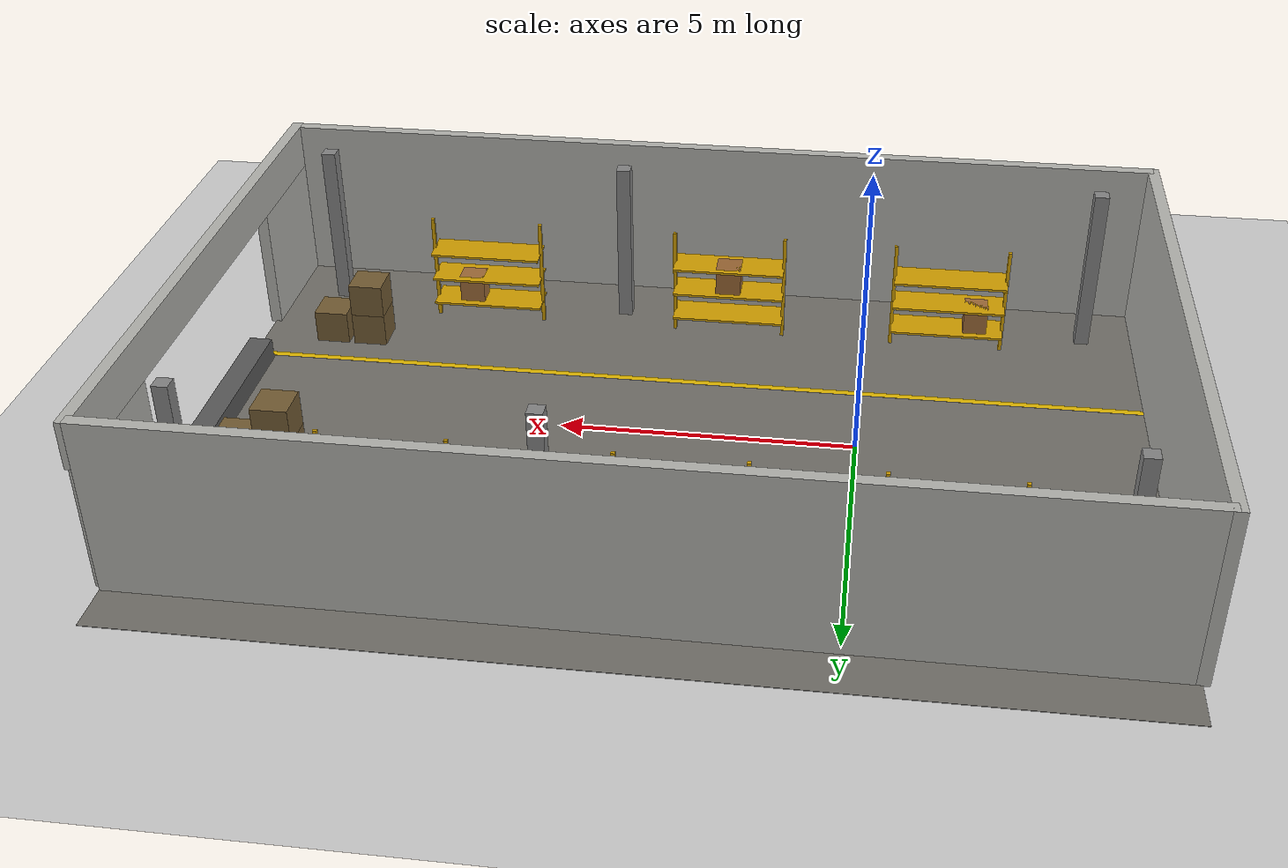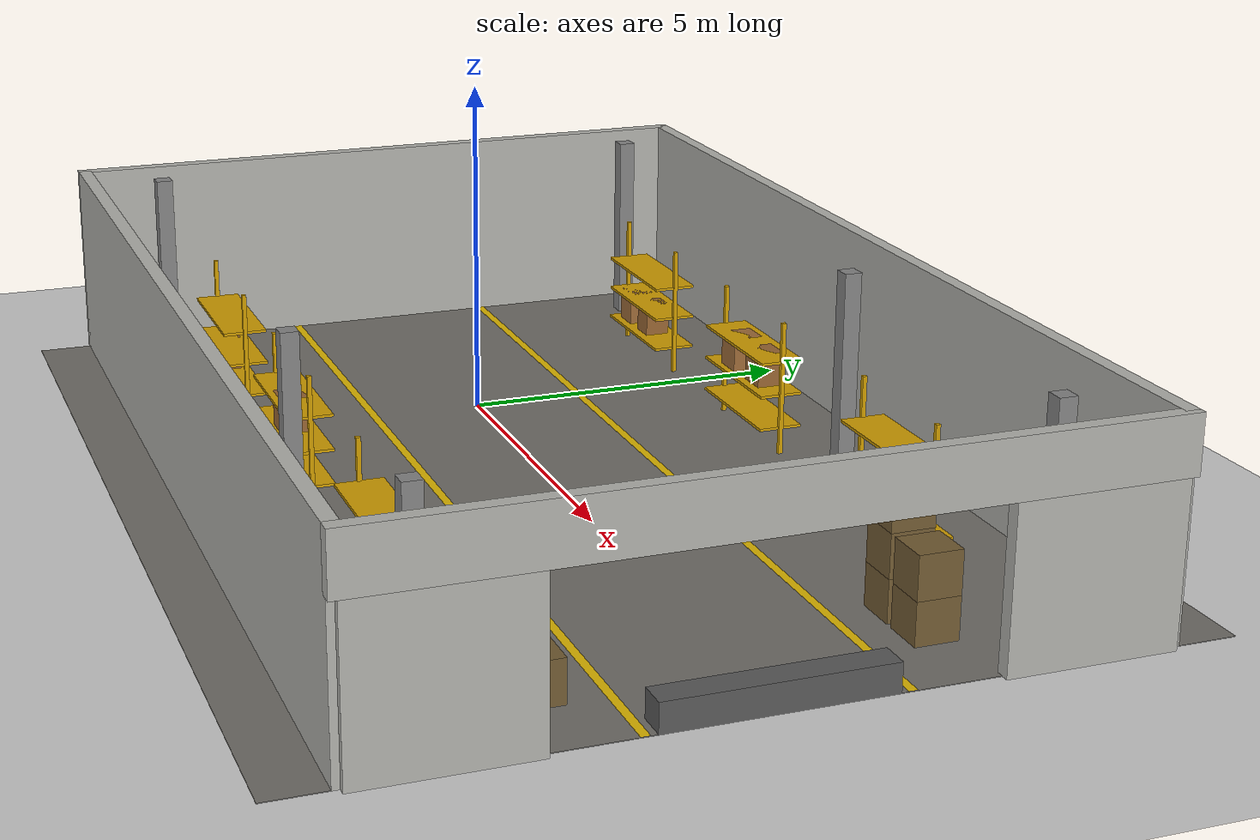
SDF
<?xml version="1.0" ?>
<sdf version="1.6">
  <world name="warehouse">

    <!-- Top-down camera: centred over the route (x=3, y=0), 22 m up -->
    <gui fullscreen="0">
      <camera name="user_camera">
        <pose>3 0 22 0 1.5708 0</pose>
        <view_controller>orbit</view_controller>
        <projection_type>perspective</projection_type>
      </camera>
    </gui>

    <physics type="ode">
      <real_time_update_rate>1000.0</real_time_update_rate>
      <max_step_size>0.001</max_step_size>
      <real_time_factor>1</real_time_factor>
      <ode>
        <solver><type>quick</type><iters>150</iters><sor>1.4</sor></solver>
      </ode>
    </physics>

    <!-- Dim industrial interior scene -->
    <scene>
      <ambient>0.25 0.25 0.25 1</ambient>
      <background>0.15 0.15 0.15 1</background>
      <shadows>true</shadows>
    </scene>

    <!-- Overhead industrial point lights -->
    <light type="point" name="light_w">
      <pose>0 0 4 0 0 0</pose>
      <diffuse>1.0 0.95 0.8 1</diffuse>
      <specular>0.15 0.15 0.15 1</specular>
      <attenuation>
        <range>14</range><constant>0.1</constant>
        <linear>0.06</linear><quadratic>0.008</quadratic>
      </attenuation>
      <cast_shadows>false</cast_shadows>
    </light>

    <light type="point" name="light_e">
      <pose>6 0 4 0 0 0</pose>
      <diffuse>1.0 0.95 0.8 1</diffuse>
      <specular>0.15 0.15 0.15 1</specular>
      <attenuation>
        <range>14</range><constant>0.1</constant>
        <linear>0.06</linear><quadratic>0.008</quadratic>
      </attenuation>
      <cast_shadows>false</cast_shadows>
    </light>

    <include><uri>model://ground_plane</uri></include>

    <!-- Concrete floor overlay (16 m x 12 m, centred at x=3) -->
    <model name="floor"><static>true</static><pose>3 0 0.005 0 0 0</pose>
      <link name="link">
        <visual name="vis">
          <geometry><box><size>16 12 0.01</size></box></geometry>
          <material>
            <ambient>0.37 0.36 0.34 1</ambient>
            <diffuse>0.44 0.43 0.41 1</diffuse>
          </material>
        </visual>
      </link>
    </model>

    <!--  PERIMETER WALLS   (x: -5..11, y: -5.1..5.1, height 3 m)        -->

    <model name="wall_n"><static>true</static><pose>3 5.1 1.5 0 0 0</pose>
      <link name="link">
        <collision name="col"><geometry><box><size>16 0.2 3.0</size></box></geometry></collision>
        <visual name="vis"><geometry><box><size>16 0.2 3.0</size></box></geometry>
          <material><ambient>0.70 0.70 0.68 1</ambient><diffuse>0.70 0.70 0.68 1</diffuse></material>
        </visual>
      </link>
    </model>

    <model name="wall_s"><static>true</static><pose>3 -5.1 1.5 0 0 0</pose>
      <link name="link">
        <collision name="col"><geometry><box><size>16 0.2 3.0</size></box></geometry></collision>
        <visual name="vis"><geometry><box><size>16 0.2 3.0</size></box></geometry>
          <material><ambient>0.70 0.70 0.68 1</ambient><diffuse>0.70 0.70 0.68 1</diffuse></material>
        </visual>
      </link>
    </model>

    <model name="wall_w"><static>true</static><pose>-5 0 1.5 0 0 0</pose>
      <link name="link">
        <collision name="col"><geometry><box><size>0.2 10.4 3.0</size></box></geometry></collision>
        <visual name="vis"><geometry><box><size>0.2 10.4 3.0</size></box></geometry>
          <material><ambient>0.70 0.70 0.68 1</ambient><diffuse>0.70 0.70 0.68 1</diffuse></material>
        </visual>
      </link>
    </model>

    <!-- East wall split around a 3 m loading-dock door centred at y=0 -->
    <model name="wall_e_top"><static>true</static><pose>11 0 2.6 0 0 0</pose>
      <link name="link">
        <collision name="col"><geometry><box><size>0.2 10.4 0.8</size></box></geometry></collision>
        <visual name="vis"><geometry><box><size>0.2 10.4 0.8</size></box></geometry>
          <material><ambient>0.70 0.70 0.68 1</ambient><diffuse>0.70 0.70 0.68 1</diffuse></material>
        </visual>
      </link>
    </model>
    <model name="wall_e_n"><static>true</static><pose>11 3.95 1.1 0 0 0</pose>
      <link name="link">
        <collision name="col"><geometry><box><size>0.2 2.3 2.2</size></box></geometry></collision>
        <visual name="vis"><geometry><box><size>0.2 2.3 2.2</size></box></geometry>
          <material><ambient>0.70 0.70 0.68 1</ambient><diffuse>0.70 0.70 0.68 1</diffuse></material>
        </visual>
      </link>
    </model>
    <model name="wall_e_s"><static>true</static><pose>11 -3.95 1.1 0 0 0</pose>
      <link name="link">
        <collision name="col"><geometry><box><size>0.2 2.3 2.2</size></box></geometry></collision>
        <visual name="vis"><geometry><box><size>0.2 2.3 2.2</size></box></geometry>
          <material><ambient>0.70 0.70 0.68 1</ambient><diffuse>0.70 0.70 0.68 1</diffuse></material>
        </visual>
      </link>
    </model>

    <!--  SUPPORT PILLARS  (0.25 x 0.25, 3 m tall, 3 pairs)              -->

    <model name="pillar_nw"><static>true</static><pose>-4 4.0 1.5 0 0 0</pose>
      <link name="link">
        <collision name="col"><geometry><box><size>0.25 0.25 3.0</size></box></geometry></collision>
        <visual name="vis"><geometry><box><size>0.25 0.25 3.0</size></box></geometry>
          <material><ambient>0.48 0.48 0.48 1</ambient><diffuse>0.52 0.52 0.52 1</diffuse></material>
        </visual>
      </link>
    </model>
    <model name="pillar_sw"><static>true</static><pose>-4 -4.0 1.5 0 0 0</pose>
      <link name="link">
        <collision name="col"><geometry><box><size>0.25 0.25 3.0</size></box></geometry></collision>
        <visual name="vis"><geometry><box><size>0.25 0.25 3.0</size></box></geometry>
          <material><ambient>0.48 0.48 0.48 1</ambient><diffuse>0.52 0.52 0.52 1</diffuse></material>
        </visual>
      </link>
    </model>
    <model name="pillar_nm"><static>true</static><pose>4.5 4.0 1.5 0 0 0</pose>
      <link name="link">
        <collision name="col"><geometry><box><size>0.25 0.25 3.0</size></box></geometry></collision>
        <visual name="vis"><geometry><box><size>0.25 0.25 3.0</size></box></geometry>
          <material><ambient>0.48 0.48 0.48 1</ambient><diffuse>0.52 0.52 0.52 1</diffuse></material>
        </visual>
      </link>
    </model>
    <model name="pillar_sm"><static>true</static><pose>4.5 -4.0 1.5 0 0 0</pose>
      <link name="link">
        <collision name="col"><geometry><box><size>0.25 0.25 3.0</size></box></geometry></collision>
        <visual name="vis"><geometry><box><size>0.25 0.25 3.0</size></box></geometry>
          <material><ambient>0.48 0.48 0.48 1</ambient><diffuse>0.52 0.52 0.52 1</diffuse></material>
        </visual>
      </link>
    </model>
    <model name="pillar_ne"><static>true</static><pose>10 4.0 1.5 0 0 0</pose>
      <link name="link">
        <collision name="col"><geometry><box><size>0.25 0.25 3.0</size></box></geometry></collision>
        <visual name="vis"><geometry><box><size>0.25 0.25 3.0</size></box></geometry>
          <material><ambient>0.48 0.48 0.48 1</ambient><diffuse>0.52 0.52 0.52 1</diffuse></material>
        </visual>
      </link>
    </model>
    <model name="pillar_se"><static>true</static><pose>10 -4.0 1.5 0 0 0</pose>
      <link name="link">
        <collision name="col"><geometry><box><size>0.25 0.25 3.0</size></box></geometry></collision>
        <visual name="vis"><geometry><box><size>0.25 0.25 3.0</size></box></geometry>
          <material><ambient>0.48 0.48 0.48 1</ambient><diffuse>0.52 0.52 0.52 1</diffuse></material>
        </visual>
      </link>
    </model>

    <!--  SHELF RACKS - NORTH SIDE  (y = 3.5)                            -->
    <!--  3 units: N1 (x -2.5 to -0.5), N2 (x 1.5 to 3.5), N3 (x 6-8) -->

    <!-- Rack N1 uprights -->
    <model name="sn1_ul"><static>true</static><pose>-2.5 3.5 1.0 0 0 0</pose>
      <link name="link">
        <collision name="col"><geometry><box><size>0.06 0.06 2.0</size></box></geometry></collision>
        <visual name="vis"><geometry><box><size>0.06 0.06 2.0</size></box></geometry>
          <material><ambient>0.82 0.62 0.0 1</ambient><diffuse>0.82 0.62 0.0 1</diffuse></material>
        </visual>
      </link>
    </model>
    <model name="sn1_ur"><static>true</static><pose>-0.5 3.5 1.0 0 0 0</pose>
      <link name="link">
        <collision name="col"><geometry><box><size>0.06 0.06 2.0</size></box></geometry></collision>
        <visual name="vis"><geometry><box><size>0.06 0.06 2.0</size></box></geometry>
          <material><ambient>0.82 0.62 0.0 1</ambient><diffuse>0.82 0.62 0.0 1</diffuse></material>
        </visual>
      </link>
    </model>
    <!-- Rack N1 shelves -->
    <model name="sn1_s1"><static>true</static><pose>-1.5 3.5 0.40 0 0 0</pose>
      <link name="link">
        <collision name="col"><geometry><box><size>2.0 0.65 0.04</size></box></geometry></collision>
        <visual name="vis"><geometry><box><size>2.0 0.65 0.04</size></box></geometry>
          <material><ambient>0.82 0.62 0.0 1</ambient><diffuse>0.82 0.62 0.0 1</diffuse></material>
        </visual>
      </link>
    </model>
    <model name="sn1_s2"><static>true</static><pose>-1.5 3.5 0.90 0 0 0</pose>
      <link name="link">
        <collision name="col"><geometry><box><size>2.0 0.65 0.04</size></box></geometry></collision>
        <visual name="vis"><geometry><box><size>2.0 0.65 0.04</size></box></geometry>
          <material><ambient>0.82 0.62 0.0 1</ambient><diffuse>0.82 0.62 0.0 1</diffuse></material>
        </visual>
      </link>
    </model>
    <model name="sn1_s3"><static>true</static><pose>-1.5 3.5 1.40 0 0 0</pose>
      <link name="link">
        <collision name="col"><geometry><box><size>2.0 0.65 0.04</size></box></geometry></collision>
        <visual name="vis"><geometry><box><size>2.0 0.65 0.04</size></box></geometry>
          <material><ambient>0.82 0.62 0.0 1</ambient><diffuse>0.82 0.62 0.0 1</diffuse></material>
        </visual>
      </link>
    </model>

    <!-- Rack N2 uprights -->
    <model name="sn2_ul"><static>true</static><pose>1.5 3.5 1.0 0 0 0</pose>
      <link name="link">
        <collision name="col"><geometry><box><size>0.06 0.06 2.0</size></box></geometry></collision>
        <visual name="vis"><geometry><box><size>0.06 0.06 2.0</size></box></geometry>
          <material><ambient>0.82 0.62 0.0 1</ambient><diffuse>0.82 0.62 0.0 1</diffuse></material>
        </visual>
      </link>
    </model>
    <model name="sn2_ur"><static>true</static><pose>3.5 3.5 1.0 0 0 0</pose>
      <link name="link">
        <collision name="col"><geometry><box><size>0.06 0.06 2.0</size></box></geometry></collision>
        <visual name="vis"><geometry><box><size>0.06 0.06 2.0</size></box></geometry>
          <material><ambient>0.82 0.62 0.0 1</ambient><diffuse>0.82 0.62 0.0 1</diffuse></material>
        </visual>
      </link>
    </model>
    <!-- Rack N2 shelves -->
    <model name="sn2_s1"><static>true</static><pose>2.5 3.5 0.40 0 0 0</pose>
      <link name="link">
        <collision name="col"><geometry><box><size>2.0 0.65 0.04</size></box></geometry></collision>
        <visual name="vis"><geometry><box><size>2.0 0.65 0.04</size></box></geometry>
          <material><ambient>0.82 0.62 0.0 1</ambient><diffuse>0.82 0.62 0.0 1</diffuse></material>
        </visual>
      </link>
    </model>
    <model name="sn2_s2"><static>true</static><pose>2.5 3.5 0.90 0 0 0</pose>
      <link name="link">
        <collision name="col"><geometry><box><size>2.0 0.65 0.04</size></box></geometry></collision>
        <visual name="vis"><geometry><box><size>2.0 0.65 0.04</size></box></geometry>
          <material><ambient>0.82 0.62 0.0 1</ambient><diffuse>0.82 0.62 0.0 1</diffuse></material>
        </visual>
      </link>
    </model>
    <model name="sn2_s3"><static>true</static><pose>2.5 3.5 1.40 0 0 0</pose>
      <link name="link">
        <collision name="col"><geometry><box><size>2.0 0.65 0.04</size></box></geometry></collision>
        <visual name="vis"><geometry><box><size>2.0 0.65 0.04</size></box></geometry>
          <material><ambient>0.82 0.62 0.0 1</ambient><diffuse>0.82 0.62 0.0 1</diffuse></material>
        </visual>
      </link>
    </model>

    <!-- Rack N3 uprights -->
    <model name="sn3_ul"><static>true</static><pose>6.0 3.5 1.0 0 0 0</pose>
      <link name="link">
        <collision name="col"><geometry><box><size>0.06 0.06 2.0</size></box></geometry></collision>
        <visual name="vis"><geometry><box><size>0.06 0.06 2.0</size></box></geometry>
          <material><ambient>0.82 0.62 0.0 1</ambient><diffuse>0.82 0.62 0.0 1</diffuse></material>
        </visual>
      </link>
    </model>
    <model name="sn3_ur"><static>true</static><pose>8.0 3.5 1.0 0 0 0</pose>
      <link name="link">
        <collision name="col"><geometry><box><size>0.06 0.06 2.0</size></box></geometry></collision>
        <visual name="vis"><geometry><box><size>0.06 0.06 2.0</size></box></geometry>
          <material><ambient>0.82 0.62 0.0 1</ambient><diffuse>0.82 0.62 0.0 1</diffuse></material>
        </visual>
      </link>
    </model>
    <!-- Rack N3 shelves -->
    <model name="sn3_s1"><static>true</static><pose>7.0 3.5 0.40 0 0 0</pose>
      <link name="link">
        <collision name="col"><geometry><box><size>2.0 0.65 0.04</size></box></geometry></collision>
        <visual name="vis"><geometry><box><size>2.0 0.65 0.04</size></box></geometry>
          <material><ambient>0.82 0.62 0.0 1</ambient><diffuse>0.82 0.62 0.0 1</diffuse></material>
        </visual>
      </link>
    </model>
    <model name="sn3_s2"><static>true</static><pose>7.0 3.5 0.90 0 0 0</pose>
      <link name="link">
        <collision name="col"><geometry><box><size>2.0 0.65 0.04</size></box></geometry></collision>
        <visual name="vis"><geometry><box><size>2.0 0.65 0.04</size></box></geometry>
          <material><ambient>0.82 0.62 0.0 1</ambient><diffuse>0.82 0.62 0.0 1</diffuse></material>
        </visual>
      </link>
    </model>
    <model name="sn3_s3"><static>true</static><pose>7.0 3.5 1.40 0 0 0</pose>
      <link name="link">
        <collision name="col"><geometry><box><size>2.0 0.65 0.04</size></box></geometry></collision>
        <visual name="vis"><geometry><box><size>2.0 0.65 0.04</size></box></geometry>
          <material><ambient>0.82 0.62 0.0 1</ambient><diffuse>0.82 0.62 0.0 1</diffuse></material>
        </visual>
      </link>
    </model>

    <!--  SHELF RACKS - SOUTH SIDE  (y = -3.5)  — mirror of north        -->

    <!-- Rack S1 uprights -->
    <model name="ss1_ul"><static>true</static><pose>-2.5 -3.5 1.0 0 0 0</pose>
      <link name="link">
        <collision name="col"><geometry><box><size>0.06 0.06 2.0</size></box></geometry></collision>
        <visual name="vis"><geometry><box><size>0.06 0.06 2.0</size></box></geometry>
          <material><ambient>0.82 0.62 0.0 1</ambient><diffuse>0.82 0.62 0.0 1</diffuse></material>
        </visual>
      </link>
    </model>
    <model name="ss1_ur"><static>true</static><pose>-0.5 -3.5 1.0 0 0 0</pose>
      <link name="link">
        <collision name="col"><geometry><box><size>0.06 0.06 2.0</size></box></geometry></collision>
        <visual name="vis"><geometry><box><size>0.06 0.06 2.0</size></box></geometry>
          <material><ambient>0.82 0.62 0.0 1</ambient><diffuse>0.82 0.62 0.0 1</diffuse></material>
        </visual>
      </link>
    </model>
    <model name="ss1_s1"><static>true</static><pose>-1.5 -3.5 0.40 0 0 0</pose>
      <link name="link">
        <collision name="col"><geometry><box><size>2.0 0.65 0.04</size></box></geometry></collision>
        <visual name="vis"><geometry><box><size>2.0 0.65 0.04</size></box></geometry>
          <material><ambient>0.82 0.62 0.0 1</ambient><diffuse>0.82 0.62 0.0 1</diffuse></material>
        </visual>
      </link>
    </model>
    <model name="ss1_s2"><static>true</static><pose>-1.5 -3.5 0.90 0 0 0</pose>
      <link name="link">
        <collision name="col"><geometry><box><size>2.0 0.65 0.04</size></box></geometry></collision>
        <visual name="vis"><geometry><box><size>2.0 0.65 0.04</size></box></geometry>
          <material><ambient>0.82 0.62 0.0 1</ambient><diffuse>0.82 0.62 0.0 1</diffuse></material>
        </visual>
      </link>
    </model>
    <model name="ss1_s3"><static>true</static><pose>-1.5 -3.5 1.40 0 0 0</pose>
      <link name="link">
        <collision name="col"><geometry><box><size>2.0 0.65 0.04</size></box></geometry></collision>
        <visual name="vis"><geometry><box><size>2.0 0.65 0.04</size></box></geometry>
          <material><ambient>0.82 0.62 0.0 1</ambient><diffuse>0.82 0.62 0.0 1</diffuse></material>
        </visual>
      </link>
    </model>

    <!-- Rack S2 uprights -->
    <model name="ss2_ul"><static>true</static><pose>1.5 -3.5 1.0 0 0 0</pose>
      <link name="link">
        <collision name="col"><geometry><box><size>0.06 0.06 2.0</size></box></geometry></collision>
        <visual name="vis"><geometry><box><size>0.06 0.06 2.0</size></box></geometry>
          <material><ambient>0.82 0.62 0.0 1</ambient><diffuse>0.82 0.62 0.0 1</diffuse></material>
        </visual>
      </link>
    </model>
    <model name="ss2_ur"><static>true</static><pose>3.5 -3.5 1.0 0 0 0</pose>
      <link name="link">
        <collision name="col"><geometry><box><size>0.06 0.06 2.0</size></box></geometry></collision>
        <visual name="vis"><geometry><box><size>0.06 0.06 2.0</size></box></geometry>
          <material><ambient>0.82 0.62 0.0 1</ambient><diffuse>0.82 0.62 0.0 1</diffuse></material>
        </visual>
      </link>
    </model>
    <model name="ss2_s1"><static>true</static><pose>2.5 -3.5 0.40 0 0 0</pose>
      <link name="link">
        <collision name="col"><geometry><box><size>2.0 0.65 0.04</size></box></geometry></collision>
        <visual name="vis"><geometry><box><size>2.0 0.65 0.04</size></box></geometry>
          <material><ambient>0.82 0.62 0.0 1</ambient><diffuse>0.82 0.62 0.0 1</diffuse></material>
        </visual>
      </link>
    </model>
    <model name="ss2_s2"><static>true</static><pose>2.5 -3.5 0.90 0 0 0</pose>
      <link name="link">
        <collision name="col"><geometry><box><size>2.0 0.65 0.04</size></box></geometry></collision>
        <visual name="vis"><geometry><box><size>2.0 0.65 0.04</size></box></geometry>
          <material><ambient>0.82 0.62 0.0 1</ambient><diffuse>0.82 0.62 0.0 1</diffuse></material>
        </visual>
      </link>
    </model>
    <model name="ss2_s3"><static>true</static><pose>2.5 -3.5 1.40 0 0 0</pose>
      <link name="link">
        <collision name="col"><geometry><box><size>2.0 0.65 0.04</size></box></geometry></collision>
        <visual name="vis"><geometry><box><size>2.0 0.65 0.04</size></box></geometry>
          <material><ambient>0.82 0.62 0.0 1</ambient><diffuse>0.82 0.62 0.0 1</diffuse></material>
        </visual>
      </link>
    </model>

    <!-- Rack S3 uprights -->
    <model name="ss3_ul"><static>true</static><pose>6.0 -3.5 1.0 0 0 0</pose>
      <link name="link">
        <collision name="col"><geometry><box><size>0.06 0.06 2.0</size></box></geometry></collision>
        <visual name="vis"><geometry><box><size>0.06 0.06 2.0</size></box></geometry>
          <material><ambient>0.82 0.62 0.0 1</ambient><diffuse>0.82 0.62 0.0 1</diffuse></material>
        </visual>
      </link>
    </model>
    <model name="ss3_ur"><static>true</static><pose>8.0 -3.5 1.0 0 0 0</pose>
      <link name="link">
        <collision name="col"><geometry><box><size>0.06 0.06 2.0</size></box></geometry></collision>
        <visual name="vis"><geometry><box><size>0.06 0.06 2.0</size></box></geometry>
          <material><ambient>0.82 0.62 0.0 1</ambient><diffuse>0.82 0.62 0.0 1</diffuse></material>
        </visual>
      </link>
    </model>
    <model name="ss3_s1"><static>true</static><pose>7.0 -3.5 0.40 0 0 0</pose>
      <link name="link">
        <collision name="col"><geometry><box><size>2.0 0.65 0.04</size></box></geometry></collision>
        <visual name="vis"><geometry><box><size>2.0 0.65 0.04</size></box></geometry>
          <material><ambient>0.82 0.62 0.0 1</ambient><diffuse>0.82 0.62 0.0 1</diffuse></material>
        </visual>
      </link>
    </model>
    <model name="ss3_s2"><static>true</static><pose>7.0 -3.5 0.90 0 0 0</pose>
      <link name="link">
        <collision name="col"><geometry><box><size>2.0 0.65 0.04</size></box></geometry></collision>
        <visual name="vis"><geometry><box><size>2.0 0.65 0.04</size></box></geometry>
          <material><ambient>0.82 0.62 0.0 1</ambient><diffuse>0.82 0.62 0.0 1</diffuse></material>
        </visual>
      </link>
    </model>
    <model name="ss3_s3"><static>true</static><pose>7.0 -3.5 1.40 0 0 0</pose>
      <link name="link">
        <collision name="col"><geometry><box><size>2.0 0.65 0.04</size></box></geometry></collision>
        <visual name="vis"><geometry><box><size>2.0 0.65 0.04</size></box></geometry>
          <material><ambient>0.82 0.62 0.0 1</ambient><diffuse>0.82 0.62 0.0 1</diffuse></material>
        </visual>
      </link>
    </model>

    <!--  CARDBOARD BOXES on shelves (brown)                              -->

    <model name="box_sn1_a"><static>true</static><pose>-2.1 3.5 0.67 0 0 0</pose>
      <link name="link">
        <collision name="col"><geometry><box><size>0.42 0.40 0.50</size></box></geometry></collision>
        <visual name="vis"><geometry><box><size>0.42 0.40 0.50</size></box></geometry>
          <material><ambient>0.58 0.38 0.18 1</ambient><diffuse>0.62 0.42 0.22 1</diffuse></material>
        </visual>
      </link>
    </model>
    <model name="box_sn1_b"><static>true</static><pose>-1.4 3.5 0.67 0 0 0</pose>
      <link name="link">
        <collision name="col"><geometry><box><size>0.38 0.38 0.50</size></box></geometry></collision>
        <visual name="vis"><geometry><box><size>0.38 0.38 0.50</size></box></geometry>
          <material><ambient>0.55 0.35 0.16 1</ambient><diffuse>0.60 0.40 0.20 1</diffuse></material>
        </visual>
      </link>
    </model>

    <model name="box_sn2_a"><static>true</static><pose>2.1 3.5 1.17 0 0 0</pose>
      <link name="link">
        <collision name="col"><geometry><box><size>0.45 0.45 0.50</size></box></geometry></collision>
        <visual name="vis"><geometry><box><size>0.45 0.45 0.50</size></box></geometry>
          <material><ambient>0.58 0.38 0.18 1</ambient><diffuse>0.62 0.42 0.22 1</diffuse></material>
        </visual>
      </link>
    </model>
    <model name="box_sn2_b"><static>true</static><pose>2.9 3.5 1.17 0 0 0</pose>
      <link name="link">
        <collision name="col"><geometry><box><size>0.45 0.40 0.50</size></box></geometry></collision>
        <visual name="vis"><geometry><box><size>0.45 0.40 0.50</size></box></geometry>
          <material><ambient>0.55 0.35 0.16 1</ambient><diffuse>0.60 0.40 0.20 1</diffuse></material>
        </visual>
      </link>
    </model>

    <model name="box_sn3_a"><static>true</static><pose>6.7 3.5 0.67 0 0 0</pose>
      <link name="link">
        <collision name="col"><geometry><box><size>0.50 0.45 0.50</size></box></geometry></collision>
        <visual name="vis"><geometry><box><size>0.50 0.45 0.50</size></box></geometry>
          <material><ambient>0.58 0.38 0.18 1</ambient><diffuse>0.62 0.42 0.22 1</diffuse></material>
        </visual>
      </link>
    </model>

    <model name="box_ss1_a"><static>true</static><pose>-2.0 -3.5 0.67 0 0 0</pose>
      <link name="link">
        <collision name="col"><geometry><box><size>0.42 0.40 0.50</size></box></geometry></collision>
        <visual name="vis"><geometry><box><size>0.42 0.40 0.50</size></box></geometry>
          <material><ambient>0.58 0.38 0.18 1</ambient><diffuse>0.62 0.42 0.22 1</diffuse></material>
        </visual>
      </link>
    </model>
    <model name="box_ss2_a"><static>true</static><pose>2.5 -3.5 1.17 0 0 0</pose>
      <link name="link">
        <collision name="col"><geometry><box><size>0.45 0.45 0.50</size></box></geometry></collision>
        <visual name="vis"><geometry><box><size>0.45 0.45 0.50</size></box></geometry>
          <material><ambient>0.55 0.35 0.16 1</ambient><diffuse>0.60 0.40 0.20 1</diffuse></material>
        </visual>
      </link>
    </model>
    <model name="box_ss3_a"><static>true</static><pose>7.3 -3.5 0.67 0 0 0</pose>
      <link name="link">
        <collision name="col"><geometry><box><size>0.45 0.38 0.50</size></box></geometry></collision>
        <visual name="vis"><geometry><box><size>0.45 0.38 0.50</size></box></geometry>
          <material><ambient>0.58 0.38 0.18 1</ambient><diffuse>0.62 0.42 0.22 1</diffuse></material>
        </visual>
      </link>
    </model>

    <!--  STACKED CRATES near loading dock (east end, y ≈ ±2.5)          -->

    <!-- Stack north (x=9, y=2.5) -->
    <model name="crate_na"><static>true</static><pose>9.0 2.5 0.30 0 0 0</pose>
      <link name="link">
        <collision name="col"><geometry><box><size>0.6 0.6 0.6</size></box></geometry></collision>
        <visual name="vis"><geometry><box><size>0.6 0.6 0.6</size></box></geometry>
          <material><ambient>0.38 0.30 0.16 1</ambient><diffuse>0.45 0.36 0.20 1</diffuse></material>
        </visual>
      </link>
    </model>
    <model name="crate_nb"><static>true</static><pose>9.0 2.5 0.90 0 0 0</pose>
      <link name="link">
        <collision name="col"><geometry><box><size>0.6 0.6 0.6</size></box></geometry></collision>
        <visual name="vis"><geometry><box><size>0.6 0.6 0.6</size></box></geometry>
          <material><ambient>0.38 0.30 0.16 1</ambient><diffuse>0.45 0.36 0.20 1</diffuse></material>
        </visual>
      </link>
    </model>
    <model name="crate_nc"><static>true</static><pose>9.0 2.5 1.50 0 0 0</pose>
      <link name="link">
        <collision name="col"><geometry><box><size>0.6 0.6 0.6</size></box></geometry></collision>
        <visual name="vis"><geometry><box><size>0.6 0.6 0.6</size></box></geometry>
          <material><ambient>0.38 0.30 0.16 1</ambient><diffuse>0.45 0.36 0.20 1</diffuse></material>
        </visual>
      </link>
    </model>
    <model name="crate_nd"><static>true</static><pose>9.7 2.5 0.30 0 0 0</pose>
      <link name="link">
        <collision name="col"><geometry><box><size>0.6 0.6 0.6</size></box></geometry></collision>
        <visual name="vis"><geometry><box><size>0.6 0.6 0.6</size></box></geometry>
          <material><ambient>0.38 0.30 0.16 1</ambient><diffuse>0.45 0.36 0.20 1</diffuse></material>
        </visual>
      </link>
    </model>
    <model name="crate_ne"><static>true</static><pose>9.7 2.5 0.90 0 0 0</pose>
      <link name="link">
        <collision name="col"><geometry><box><size>0.6 0.6 0.6</size></box></geometry></collision>
        <visual name="vis"><geometry><box><size>0.6 0.6 0.6</size></box></geometry>
          <material><ambient>0.38 0.30 0.16 1</ambient><diffuse>0.45 0.36 0.20 1</diffuse></material>
        </visual>
      </link>
    </model>

    <!-- Stack south (x=9, y=-2.5) -->
    <model name="crate_sa"><static>true</static><pose>9.0 -2.5 0.30 0 0 0</pose>
      <link name="link">
        <collision name="col"><geometry><box><size>0.6 0.6 0.6</size></box></geometry></collision>
        <visual name="vis"><geometry><box><size>0.6 0.6 0.6</size></box></geometry>
          <material><ambient>0.38 0.30 0.16 1</ambient><diffuse>0.45 0.36 0.20 1</diffuse></material>
        </visual>
      </link>
    </model>
    <model name="crate_sb"><static>true</static><pose>9.0 -2.5 0.90 0 0 0</pose>
      <link name="link">
        <collision name="col"><geometry><box><size>0.6 0.6 0.6</size></box></geometry></collision>
        <visual name="vis"><geometry><box><size>0.6 0.6 0.6</size></box></geometry>
          <material><ambient>0.38 0.30 0.16 1</ambient><diffuse>0.45 0.36 0.20 1</diffuse></material>
        </visual>
      </link>
    </model>
    <model name="crate_sc"><static>true</static><pose>9.7 -2.5 0.30 0 0 0</pose>
      <link name="link">
        <collision name="col"><geometry><box><size>0.6 0.6 0.6</size></box></geometry></collision>
        <visual name="vis"><geometry><box><size>0.6 0.6 0.6</size></box></geometry>
          <material><ambient>0.38 0.30 0.16 1</ambient><diffuse>0.45 0.36 0.20 1</diffuse></material>
        </visual>
      </link>
    </model>

    <!--  LOADING DOCK PLATFORM  (east wall, raised 0.4 m)               -->

    <model name="dock_platform"><static>true</static><pose>10.8 0 0.20 0 0 0</pose>
      <link name="link">
        <collision name="col"><geometry><box><size>0.4 3.0 0.4</size></box></geometry></collision>
        <visual name="vis"><geometry><box><size>0.4 3.0 0.4</size></box></geometry>
          <material><ambient>0.30 0.30 0.30 1</ambient><diffuse>0.35 0.35 0.35 1</diffuse></material>
        </visual>
      </link>
    </model>

    <!-- Dock bumpers (yellow rubber) -->
    <model name="dock_bumper_n"><static>true</static><pose>10.85 0.9 0.10 0 0 0</pose>
      <link name="link">
        <collision name="col"><geometry><box><size>0.12 0.25 0.20</size></box></geometry></collision>
        <visual name="vis"><geometry><box><size>0.12 0.25 0.20</size></box></geometry>
          <material><ambient>0.85 0.70 0.0 1</ambient><diffuse>0.90 0.75 0.0 1</diffuse></material>
        </visual>
      </link>
    </model>
    <model name="dock_bumper_s"><static>true</static><pose>10.85 -0.9 0.10 0 0 0</pose>
      <link name="link">
        <collision name="col"><geometry><box><size>0.12 0.25 0.20</size></box></geometry></collision>
        <visual name="vis"><geometry><box><size>0.12 0.25 0.20</size></box></geometry>
          <material><ambient>0.85 0.70 0.0 1</ambient><diffuse>0.90 0.75 0.0 1</diffuse></material>
        </visual>
      </link>
    </model>

    <!--  SAFETY AISLE MARKINGS  (yellow floor stripes, visual only)     -->

    <model name="lane_n"><static>true</static><pose>3 1.65 0.012 0 0 0</pose>
      <link name="link">
        <visual name="vis">
          <geometry><box><size>16 0.12 0.002</size></box></geometry>
          <material><ambient>0.88 0.72 0.0 1</ambient><diffuse>0.88 0.72 0.0 1</diffuse></material>
        </visual>
      </link>
    </model>
    <model name="lane_s"><static>true</static><pose>3 -1.65 0.012 0 0 0</pose>
      <link name="link">
        <visual name="vis">
          <geometry><box><size>16 0.12 0.002</size></box></geometry>
          <material><ambient>0.88 0.72 0.0 1</ambient><diffuse>0.88 0.72 0.0 1</diffuse></material>
        </visual>
      </link>
    </model>

  </world>
</sdf>
